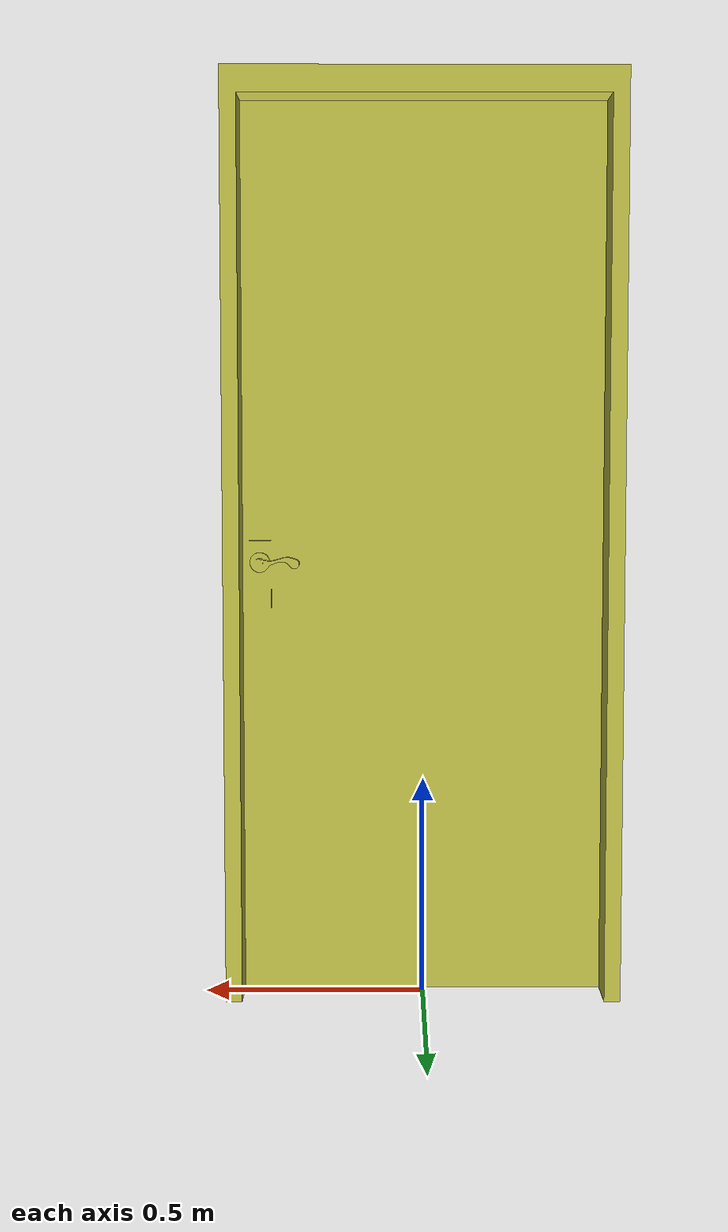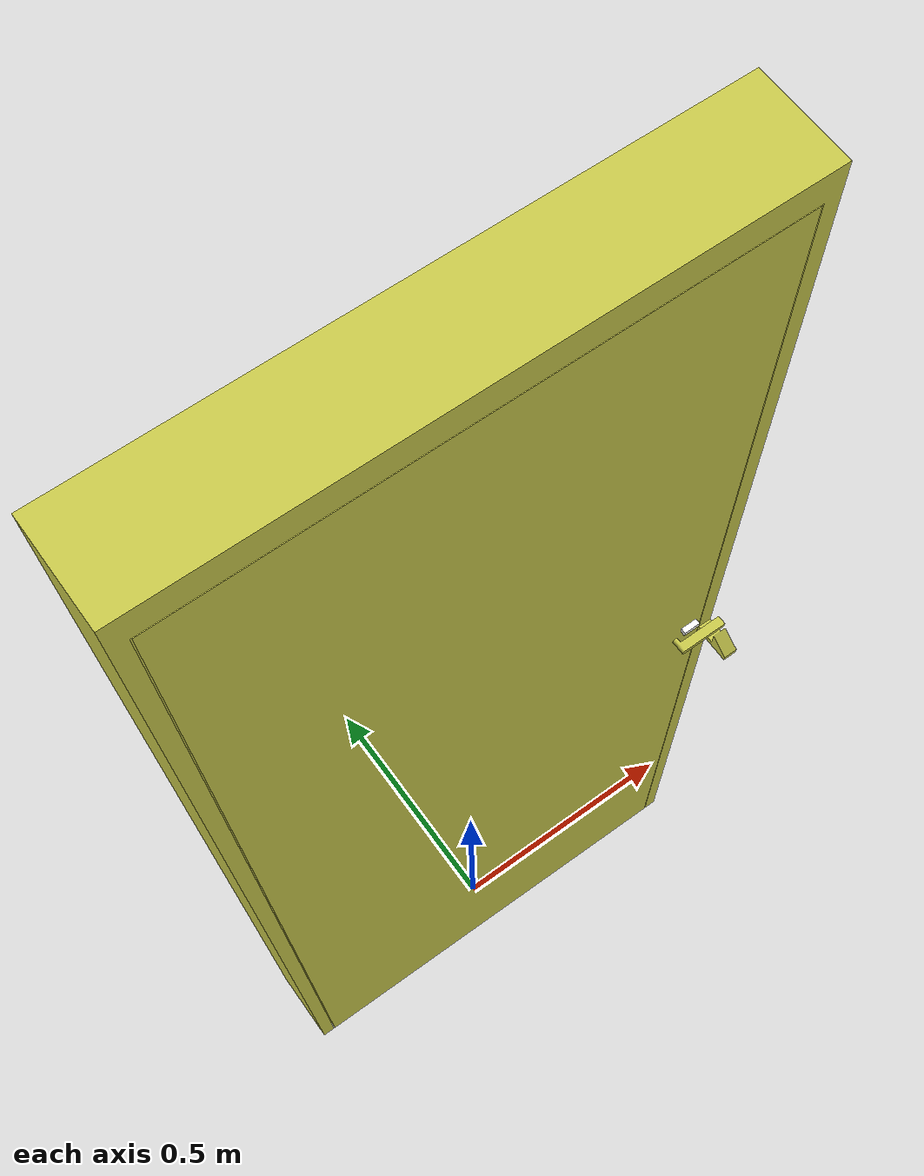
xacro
<?xml version="1.0" ?>
<robot xmlns:xacro="http://www.ros.org/wiki/xacro" name="door">

 <link name="world"/>
  <joint name="fixed" type="fixed">
    <parent link="world"/>
    <child link="baseLink"/>
    <origin rpy= "0 0 1.571" xyz="0 0 0"/>
  </joint>

<link name="baseLink">
    <inertial>
      <origin rpy="0 0 0" xyz="0 0 0"/>
      <mass value="1.0"/>
      <inertia ixx="0.048966669" ixy="0" ixz="0" iyy="0.046466667" iyz="0" izz="0.0041666669"/>
    </inertial>
    <visual>
      <origin rpy="0 0 0" xyz="0 0 0"/>
       <geometry>
         <mesh filename="package://reemc_door/models/meshes/frame3.stl"/>
       </geometry>
	   <material name="doormat0">
      <color rgba="0.8 0.8 0.3 1" />
      </material>

	  </visual>
     <collision>
       <origin rpy="0 0 0" xyz="0 0 0"/>
       <geometry>
         <mesh filename="package://reemc_door/models/meshes/frame3.stl"/>
       </geometry>
     </collision>

   </link>
   <link name="door">
    <inertial>
      <origin rpy="0 0 0" xyz="0 0 0"/>
      <mass value="1.0"/>
      <inertia ixx="0.048966669" ixy="0" ixz="0" iyy="0.046466667" iyz="0" izz="0.0041666669"/>
    </inertial>
    <visual>
      <origin rpy="0 0 0" xyz="0 0 0"/>
       <geometry>
         <mesh filename="package://reemc_door/models/meshes/door3.stl"/>
       </geometry>
	   <material name="doormat0">
      <color rgba="0.8 0.8 0.3 1" />
      </material>

	  </visual>
     <collision>
      <origin rpy="0 0 0" xyz="0 0 0"/>
       <geometry>
         <mesh filename="package://reemc_door/models/meshes/door3.stl"/>
       </geometry>
     </collision>

   </link>

  <joint name="joint_baseLink_door" type="revolute">
    <parent link="baseLink"/>
    <child link="door"/>
    <dynamics damping="1.0" friction="0.0001"/>
    <origin xyz="0 0 0"/>
    <axis xyz="0 0 1"/>
    <limit effort="1000.0" lower="-2.0" upper="0.0" velocity="0.5"/>
    <mimic joint="joint_door_lever" multiplier="2"/>
  </joint>

  <link name="lever">
    <inertial>
      <origin rpy="0 0 0" xyz="0 0 0"/>
      <mass value="1.0"/>
      <inertia ixx="0.048966669" ixy="0" ixz="0" iyy="0.046466667" iyz="0" izz="0.0041666669"/>
    </inertial>
    <visual>
      <origin rpy="0 0 0" xyz="0 0 0"/>
       <geometry>
         <mesh filename="package://reemc_door/models/meshes/lever3.stl"/>
       </geometry>
	   <material name="doormat0">
      <color rgba="0.8 0.8 0.3 1" />
      </material>

	  </visual>
     <collision>
       <origin rpy="0 0 0" xyz="0 0 0"/>
       <geometry>
         <mesh filename="package://reemc_door/models/meshes/lever3.stl"/>
       </geometry>
     </collision>

   </link>

   <joint name="joint_door_lever" type="revolute">
    <parent link="door"/>
    <child link="lever"/>
	<dynamics damping="1.0" friction="0.0001"/>
    <origin rpy="0 1.5708 0" xyz="-0.01509 -0.373 1.0"/>
		<axis xyz="0 0 1"/>

   <limit effort="1000.0" lower="-1.0" upper="0.0" velocity="0.5"/>
    <mimic joint="joint_baseLink_door" multiplier="0.5"/>
  </joint>

  <link name="latch">
    <inertial>
      <origin rpy="0 0 0" xyz="0 0 0"/>
      <mass value="1.0"/>
      <inertia ixx="0.048966669" ixy="0" ixz="0" iyy="0.046466667" iyz="0" izz="0.0041666669"/>
    </inertial>
    <visual>
      <origin rpy="0 0 0" xyz="0 0 0"/>
       <geometry>
         <box size="0.01 0.01 0.03"/>
       </geometry>
	   <material name="doormat0">
      <color rgba="1 1 1 1" />
      </material>

	  </visual>
     <collision>
       <origin rpy="0 0 0" xyz="0 0 0"/>
       <geometry>
         <box size="0.01 0.01 0.03"/>
       </geometry>
     </collision>

   </link>

  <joint name="joint_door_latch" type="prismatic">
    <parent link="door"/>
    <child link="latch"/>
    <dynamics damping="1.0" friction="0.0001"/>
    <limit effort="1000.0" lower="-0.02" upper="0.02" velocity="0.5"/>
    <origin rpy="1.5708 0 0" xyz="-0.1 -0.37 1.1"/>
    <axis xyz="0 0 1"/>

  </joint>

  <gazebo reference="lever">
    <self_collide>1</self_collide>
  </gazebo>
  <gazebo reference="baseLink">
    <self_collide>1</self_collide>
  </gazebo>
 <gazebo reference="door">
    <self_collide>1</self_collide>
  </gazebo>
</robot>
